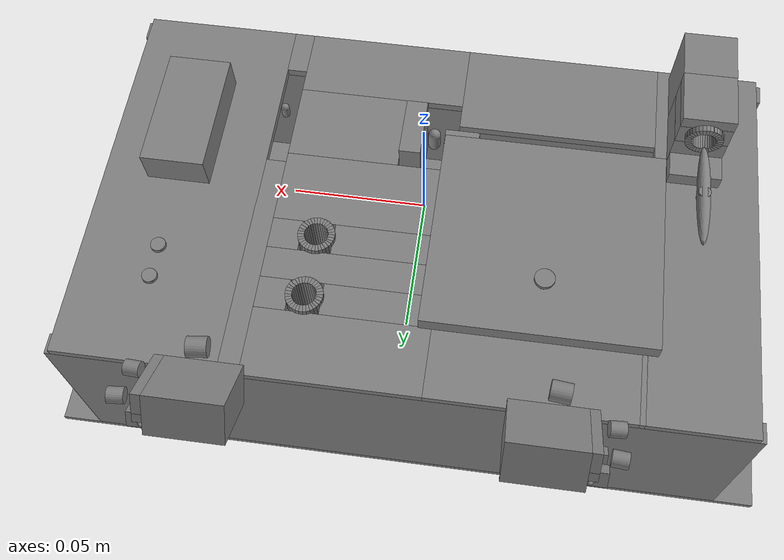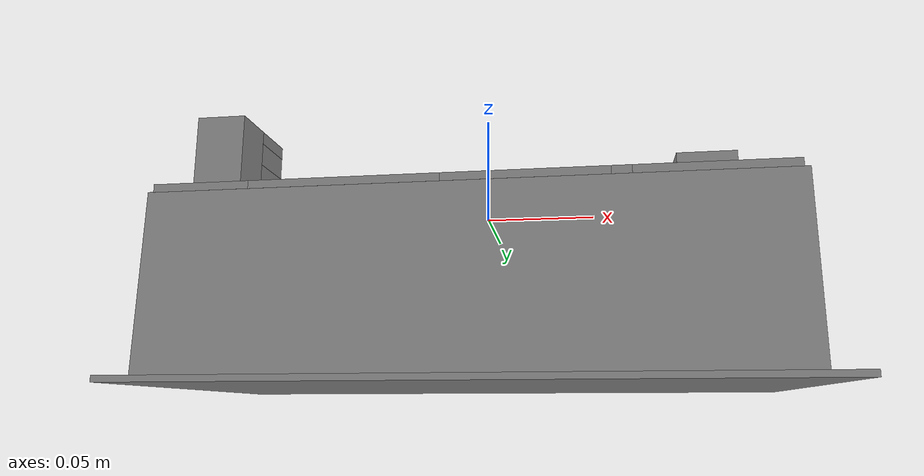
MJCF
<mujoco model="MuJoCo Model">
  <compiler angle="radian"/>

  <worldbody>
    <body name="task_board_prim">
      <body name="task_board_main_prim">
        <geom name="task_board_main_collision_001_prim" size="0.00134343 0.0781258 0.144743" pos="-0.000692189 0.000563499 -0.0781784" quat="0 0.707107 0 0.707107" type="box"/>
        <geom name="task_board_main_collision_002_prim" size="0.00379953 0.0368795 0.128913" pos="-0.000740358 -0.0727772 -0.0401744" quat="0.506585 0.493345 0.506567 0.493328" type="box"/>
        <geom name="task_board_main_collision_003_prim" size="0.00379971 0.0368805 0.128919" pos="-0.00070511 0.0739008 -0.0401748" quat="0.493332 0.506577 0.49334 0.506576" type="box"/>
        <geom name="task_board_main_collision_004_prim" size="0.00130879 0.0368203 0.0705451" pos="-0.127237 0.000563446 -0.0402381" quat="0.707031 0.707031 0.0103232 -0.0103232" type="box"/>
        <geom name="task_board_main_collision_005_prim" size="0.00130879 0.0368203 0.0705791" pos="0.125836 0.000556891 -0.0402381" quat="0.707031 0.707031 -0.0103232 0.0103232" type="box"/>
        <geom name="task_board_main_collision_006_prim" size="0.001651 0.030813 0.0761998" pos="0.0950813 0.000562715 -0.001651" quat="0.499997 0.500003 -0.499997 0.500003" type="box"/>
        <geom name="task_board_main_collision_007_prim" size="0.001651 0.0200923 0.0761996" pos="-0.107209 0.000562997 -0.001651" quat="0.500001 0.499999 -0.500001 0.499999" type="box"/>
        <geom name="task_board_main_collision_008_prim" size="0.000999998 0.001651 0.0514285" pos="-0.086284 0.0253345 -0.001651" quat="0.707107 0.707107 0 0" type="box"/>
        <geom name="task_board_main_collision_009_prim" size="0.001651 0.0187765 0.039" pos="-0.048284 -0.0568595 -0.001651" quat="0 0.707107 0 0.707107" type="box"/>
        <geom name="task_board_main_collision_010_prim" size="0.001651 0.0139015 0.0328635" pos="0.0235795 -0.0617345 -0.001651" quat="0 0.707107 0 0.707107" type="box"/>
        <geom name="task_board_main_collision_011_prim" size="0.001651 0.004 0.00942799" pos="0.060443 -0.066208 -0.001651" quat="0.5 0.5 -0.5 0.5" type="box"/>
        <geom name="task_board_main_collision_012_prim" size="0.001651 0.0155 0.0218635" pos="0.0345795 -0.032333 -0.001651" quat="0 0.707107 0 0.707107" type="box"/>
        <geom name="task_board_main_collision_013_prim" size="0.001651 0.014745 0.0328635" pos="0.0235795 -0.002088 -0.001651" quat="0 0.707107 0 0.707107" type="box"/>
        <geom name="task_board_main_collision_014_prim" size="0.001651 0.004 0.0447715" pos="0.060443 0.0319915 -0.001651" quat="0.5 0.5 -0.5 0.5" type="box"/>
        <geom name="task_board_main_collision_015_prim" size="0.001651 0.013303 0.0328635" pos="0.0235795 0.06346 -0.001651" quat="0 0.707107 0 0.707107" type="box"/>
        <geom name="task_board_main_collision_016_prim" size="0.001651 0.00625 0.0328635" pos="0.0235795 0.031407 -0.001651" quat="0 0.707107 0 0.707107" type="box"/>
        <geom name="task_board_main_collision_017_prim" size="0.001651 0.0058795 0.00625" pos="0.0505635 0.043907 -0.001651" quat="0.5 0.5 -0.5 0.5" type="box"/>
        <geom name="task_board_main_collision_018_prim" size="0.001651 0.0058795 0.00625" pos="0.0505635 0.018907 -0.001651" quat="0.5 0.5 -0.5 0.5" type="box"/>
        <geom name="task_board_main_collision_019_prim" size="0.001651 0.00625 0.0207435" pos="0.0114595 0.018907 -0.001651" quat="0 0.707107 0 0.707107" type="box"/>
        <geom name="task_board_main_collision_020_prim" size="0.001651 0.00625 0.0207435" pos="0.0114595 0.043907 -0.001651" quat="0 0.707107 0 0.707107" type="box"/>
        <geom name="task_board_main_collision_021_prim" size="0.001651 0.013923 0.038" pos="-0.047284 0.06284 -0.001651" quat="0 0.707107 0 0.707107" type="box"/>
        <geom name="task_board_main_collision_022_prim" size="0.0042 0.012 0.0155" pos="0.008516 -0.032333 -0.010402" type="box"/>
        <geom name="task_board_main_collision_023_prim" size="0.002475 0.002997" pos="0.000116006 -0.032033 -0.001902" type="capsule"/>
        <geom name="task_board_main_collision_024_prim" size="0.00306372 0.00322174 0.0068" pos="-0.010884 -0.032033 -0.001902" quat="0.5 0.5 0.5 0.5" type="box"/>
      </body>
      <body name="task_board_banana_plug_black_prim" pos="0.038443 0.043907 0">
        <body name="task_board_banana_plug_black_hole_prim" pos="0 0 0.0025">
          <geom name="task_board_banana_plug_hole_black_collision_001_prim" size="0.000686124 0.00126752 0.0117035" pos="0.00579674 -7.93951e-07 -0.0117495" quat="0.707107 -0.000234279 -0.000234279 0.707107" type="box"/>
          <geom name="task_board_banana_plug_hole_black_collision_002_prim" size="0.000686124 0.00126752 0.0117035" pos="0.00568551 0.00113011 -0.0117495" quat="0.634393 -0.000210188 -0.000256115 0.77301" type="box"/>
          <geom name="task_board_banana_plug_hole_black_collision_003_prim" size="0.000686124 0.00126752 0.0117035" pos="0.0053558 0.00221758 -0.0117495" quat="0.55557 -0.000184072 -0.000275483 0.831469" type="box"/>
          <geom name="task_board_banana_plug_hole_black_collision_004_prim" size="0.000686124 0.00126752 0.0117035" pos="0.00482025 0.00321984 -0.0117495" quat="0.471396 -0.000156184 -0.000292199 0.881921" type="box"/>
          <geom name="task_board_banana_plug_hole_black_collision_005_prim" size="0.000686124 0.00126752 0.0117035" pos="0.00409948 0.00409835 -0.0117495" quat="0.382684 -0.000126791 -0.000306101 0.923879" type="box"/>
          <geom name="task_board_banana_plug_hole_black_collision_006_prim" size="0.000686124 0.00126752 0.0117035" pos="0.00322115 0.00481938 -0.0117495" quat="0.290284 -9.61773e-05 -0.000317055 0.95694" type="box"/>
          <geom name="task_board_banana_plug_hole_black_collision_007_prim" size="0.000686124 0.00126752 0.0117035" pos="0.00221905 0.00535519 -0.0117495" quat="0.195091 -6.46377e-05 -0.000324955 0.980785" type="box"/>
          <geom name="task_board_banana_plug_hole_black_collision_008_prim" size="0.000686124 0.00126752 0.0117035" pos="0.00113167 0.0056852 -0.0117495" quat="0.0980171 -3.24751e-05 -0.000329726 0.995185" type="box"/>
          <geom name="task_board_banana_plug_hole_black_collision_009_prim" size="0.000686124 0.00126752 0.0117035" pos="7.93951e-07 0.00579674 -0.0117495" quat="0 0 -0.000331321 1" type="box"/>
          <geom name="task_board_banana_plug_hole_black_collision_010_prim" size="0.000686124 0.00126752 0.0117035" pos="-0.00113011 0.00568551 -0.0117495" quat="-0.0980171 3.24751e-05 -0.000329726 0.995185" type="box"/>
          <geom name="task_board_banana_plug_hole_black_collision_011_prim" size="0.000686124 0.00126752 0.0117035" pos="-0.00221759 0.00535579 -0.0117495" quat="-0.195091 6.46377e-05 -0.000324955 0.980785" type="box"/>
          <geom name="task_board_banana_plug_hole_black_collision_012_prim" size="0.000686124 0.00126752 0.0117035" pos="-0.00321983 0.00482026 -0.0117495" quat="-0.290284 9.61773e-05 -0.000317055 0.95694" type="box"/>
          <geom name="task_board_banana_plug_hole_black_collision_013_prim" size="0.000686124 0.00126752 0.0117035" pos="-0.00409836 0.00409947 -0.0117495" quat="-0.382684 0.000126791 -0.000306101 0.923879" type="box"/>
          <geom name="task_board_banana_plug_hole_black_collision_014_prim" size="0.000686124 0.00126752 0.0117035" pos="-0.00481937 0.00322116 -0.0117495" quat="-0.471396 0.000156184 -0.000292199 0.881921" type="box"/>
          <geom name="task_board_banana_plug_hole_black_collision_015_prim" size="0.000686124 0.00126752 0.0117035" pos="-0.00535519 0.00221905 -0.0117495" quat="-0.55557 0.000184072 -0.000275483 0.831469" type="box"/>
          <geom name="task_board_banana_plug_hole_black_collision_016_prim" size="0.000686124 0.00126752 0.0117035" pos="-0.0056852 0.00113167 -0.0117495" quat="-0.634393 0.000210188 -0.000256115 0.77301" type="box"/>
          <geom name="task_board_banana_plug_hole_black_collision_017_prim" size="0.000686124 0.00126752 0.0117035" pos="-0.00579674 7.93951e-07 -0.0117495" quat="-0.707107 0.000234279 -0.000234279 0.707107" type="box"/>
          <geom name="task_board_banana_plug_hole_black_collision_018_prim" size="0.000686124 0.00126752 0.0117035" pos="-0.00568551 -0.00113011 -0.0117495" quat="-0.77301 0.000256115 -0.000210188 0.634393" type="box"/>
          <geom name="task_board_banana_plug_hole_black_collision_019_prim" size="0.000686124 0.00126752 0.0117035" pos="-0.0053558 -0.00221758 -0.0117495" quat="-0.831469 0.000275483 -0.000184072 0.55557" type="box"/>
          <geom name="task_board_banana_plug_hole_black_collision_020_prim" size="0.000686124 0.00126752 0.0117035" pos="-0.00482025 -0.00321984 -0.0117495" quat="-0.881921 0.000292199 -0.000156184 0.471396" type="box"/>
          <geom name="task_board_banana_plug_hole_black_collision_021_prim" size="0.000686124 0.00126752 0.0117035" pos="-0.00409948 -0.00409835 -0.0117495" quat="-0.923879 0.000306101 -0.000126791 0.382684" type="box"/>
          <geom name="task_board_banana_plug_hole_black_collision_022_prim" size="0.000686124 0.00126752 0.0117035" pos="-0.00322115 -0.00481938 -0.0117495" quat="-0.95694 0.000317055 -9.61773e-05 0.290284" type="box"/>
          <geom name="task_board_banana_plug_hole_black_collision_023_prim" size="0.000686124 0.00126752 0.0117035" pos="-0.00221905 -0.00535519 -0.0117495" quat="-0.980785 0.000324955 -6.46377e-05 0.195091" type="box"/>
          <geom name="task_board_banana_plug_hole_black_collision_024_prim" size="0.000686124 0.00126752 0.0117035" pos="-0.00113167 -0.0056852 -0.0117495" quat="-0.995185 0.000329726 -3.24751e-05 0.0980171" type="box"/>
          <geom name="task_board_banana_plug_hole_black_collision_025_prim" size="0.000686124 0.00126752 0.0117035" pos="-7.93951e-07 -0.00579674 -0.0117495" quat="-1 0.000331321 0 0" type="box"/>
          <geom name="task_board_banana_plug_hole_black_collision_026_prim" size="0.000686124 0.00126752 0.0117035" pos="0.00113011 -0.00568551 -0.0117495" quat="-0.995185 0.000329726 3.24751e-05 -0.0980171" type="box"/>
          <geom name="task_board_banana_plug_hole_black_collision_027_prim" size="0.000686124 0.00126752 0.0117035" pos="0.00221759 -0.00535579 -0.0117495" quat="-0.980785 0.000324955 6.46377e-05 -0.195091" type="box"/>
          <geom name="task_board_banana_plug_hole_black_collision_028_prim" size="0.000686124 0.00126752 0.0117035" pos="0.00321983 -0.00482026 -0.0117495" quat="-0.95694 0.000317055 9.61773e-05 -0.290284" type="box"/>
          <geom name="task_board_banana_plug_hole_black_collision_029_prim" size="0.000686124 0.00126752 0.0117035" pos="0.00409836 -0.00409947 -0.0117495" quat="-0.923879 0.000306101 0.000126791 -0.382684" type="box"/>
          <geom name="task_board_banana_plug_hole_black_collision_030_prim" size="0.000686124 0.00126752 0.0117035" pos="0.00481937 -0.00322116 -0.0117495" quat="-0.881921 0.000292199 0.000156184 -0.471396" type="box"/>
          <geom name="task_board_banana_plug_hole_black_collision_031_prim" size="0.000686124 0.00126752 0.0117035" pos="0.00535519 -0.00221905 -0.0117495" quat="-0.831469 0.000275483 0.000184072 -0.55557" type="box"/>
          <geom name="task_board_banana_plug_hole_black_collision_032_prim" size="0.000686124 0.00126752 0.0117035" pos="0.0056852 -0.00113167 -0.0117495" quat="-0.77301 0.000256115 0.000210188 -0.634393" type="box"/>
        </body>
      </body>
      <body name="task_board_banana_plug_red_prim" pos="0.038443 0.018907 0">
        <body name="task_board_banana_plug_red_hole_prim" pos="0 0 0.0025">
          <geom name="task_board_banana_plug_hole_red_collision_001_prim" size="0.000686124 0.00126752 0.0117035" pos="0.00579674 -7.93951e-07 -0.0117495" quat="0.707107 -0.000234279 -0.000234279 0.707107" type="box"/>
          <geom name="task_board_banana_plug_hole_red_collision_002_prim" size="0.000686124 0.00126752 0.0117035" pos="0.00568551 0.00113011 -0.0117495" quat="0.634393 -0.000210188 -0.000256115 0.77301" type="box"/>
          <geom name="task_board_banana_plug_hole_red_collision_003_prim" size="0.000686124 0.00126752 0.0117035" pos="0.0053558 0.00221758 -0.0117495" quat="0.55557 -0.000184072 -0.000275483 0.831469" type="box"/>
          <geom name="task_board_banana_plug_hole_red_collision_004_prim" size="0.000686124 0.00126752 0.0117035" pos="0.00482025 0.00321984 -0.0117495" quat="0.471396 -0.000156184 -0.000292199 0.881921" type="box"/>
          <geom name="task_board_banana_plug_hole_red_collision_005_prim" size="0.000686124 0.00126752 0.0117035" pos="0.00409948 0.00409835 -0.0117495" quat="0.382684 -0.000126791 -0.000306101 0.923879" type="box"/>
          <geom name="task_board_banana_plug_hole_red_collision_006_prim" size="0.000686124 0.00126752 0.0117035" pos="0.00322115 0.00481938 -0.0117495" quat="0.290284 -9.61773e-05 -0.000317055 0.95694" type="box"/>
          <geom name="task_board_banana_plug_hole_red_collision_007_prim" size="0.000686124 0.00126752 0.0117035" pos="0.00221905 0.00535519 -0.0117495" quat="0.195091 -6.46377e-05 -0.000324955 0.980785" type="box"/>
          <geom name="task_board_banana_plug_hole_red_collision_008_prim" size="0.000686124 0.00126752 0.0117035" pos="0.00113167 0.0056852 -0.0117495" quat="0.0980171 -3.24751e-05 -0.000329726 0.995185" type="box"/>
          <geom name="task_board_banana_plug_hole_red_collision_009_prim" size="0.000686124 0.00126752 0.0117035" pos="7.93951e-07 0.00579674 -0.0117495" quat="0 0 -0.000331321 1" type="box"/>
          <geom name="task_board_banana_plug_hole_red_collision_010_prim" size="0.000686124 0.00126752 0.0117035" pos="-0.00113011 0.00568551 -0.0117495" quat="-0.0980171 3.24751e-05 -0.000329726 0.995185" type="box"/>
          <geom name="task_board_banana_plug_hole_red_collision_011_prim" size="0.000686124 0.00126752 0.0117035" pos="-0.00221759 0.00535579 -0.0117495" quat="-0.195091 6.46377e-05 -0.000324955 0.980785" type="box"/>
          <geom name="task_board_banana_plug_hole_red_collision_012_prim" size="0.000686124 0.00126752 0.0117035" pos="-0.00321983 0.00482026 -0.0117495" quat="-0.290284 9.61773e-05 -0.000317055 0.95694" type="box"/>
          <geom name="task_board_banana_plug_hole_red_collision_013_prim" size="0.000686124 0.00126752 0.0117035" pos="-0.00409836 0.00409947 -0.0117495" quat="-0.382684 0.000126791 -0.000306101 0.923879" type="box"/>
          <geom name="task_board_banana_plug_hole_red_collision_014_prim" size="0.000686124 0.00126752 0.0117035" pos="-0.00481937 0.00322116 -0.0117495" quat="-0.471396 0.000156184 -0.000292199 0.881921" type="box"/>
          <geom name="task_board_banana_plug_hole_red_collision_015_prim" size="0.000686124 0.00126752 0.0117035" pos="-0.00535519 0.00221905 -0.0117495" quat="-0.55557 0.000184072 -0.000275483 0.831469" type="box"/>
          <geom name="task_board_banana_plug_hole_red_collision_016_prim" size="0.000686124 0.00126752 0.0117035" pos="-0.0056852 0.00113167 -0.0117495" quat="-0.634393 0.000210188 -0.000256115 0.77301" type="box"/>
          <geom name="task_board_banana_plug_hole_red_collision_017_prim" size="0.000686124 0.00126752 0.0117035" pos="-0.00579674 7.93951e-07 -0.0117495" quat="-0.707107 0.000234279 -0.000234279 0.707107" type="box"/>
          <geom name="task_board_banana_plug_hole_red_collision_018_prim" size="0.000686124 0.00126752 0.0117035" pos="-0.00568551 -0.00113011 -0.0117495" quat="-0.77301 0.000256115 -0.000210188 0.634393" type="box"/>
          <geom name="task_board_banana_plug_hole_red_collision_019_prim" size="0.000686124 0.00126752 0.0117035" pos="-0.0053558 -0.00221758 -0.0117495" quat="-0.831469 0.000275483 -0.000184072 0.55557" type="box"/>
          <geom name="task_board_banana_plug_hole_red_collision_020_prim" size="0.000686124 0.00126752 0.0117035" pos="-0.00482025 -0.00321984 -0.0117495" quat="-0.881921 0.000292199 -0.000156184 0.471396" type="box"/>
          <geom name="task_board_banana_plug_hole_red_collision_021_prim" size="0.000686124 0.00126752 0.0117035" pos="-0.00409948 -0.00409835 -0.0117495" quat="-0.923879 0.000306101 -0.000126791 0.382684" type="box"/>
          <geom name="task_board_banana_plug_hole_red_collision_022_prim" size="0.000686124 0.00126752 0.0117035" pos="-0.00322115 -0.00481938 -0.0117495" quat="-0.95694 0.000317055 -9.61773e-05 0.290284" type="box"/>
          <geom name="task_board_banana_plug_hole_red_collision_023_prim" size="0.000686124 0.00126752 0.0117035" pos="-0.00221905 -0.00535519 -0.0117495" quat="-0.980785 0.000324955 -6.46377e-05 0.195091" type="box"/>
          <geom name="task_board_banana_plug_hole_red_collision_024_prim" size="0.000686124 0.00126752 0.0117035" pos="-0.00113167 -0.0056852 -0.0117495" quat="-0.995185 0.000329726 -3.24751e-05 0.0980171" type="box"/>
          <geom name="task_board_banana_plug_hole_red_collision_025_prim" size="0.000686124 0.00126752 0.0117035" pos="-7.93951e-07 -0.00579674 -0.0117495" quat="-1 0.000331321 0 0" type="box"/>
          <geom name="task_board_banana_plug_hole_red_collision_026_prim" size="0.000686124 0.00126752 0.0117035" pos="0.00113011 -0.00568551 -0.0117495" quat="-0.995185 0.000329726 3.24751e-05 -0.0980171" type="box"/>
          <geom name="task_board_banana_plug_hole_red_collision_027_prim" size="0.000686124 0.00126752 0.0117035" pos="0.00221759 -0.00535579 -0.0117495" quat="-0.980785 0.000324955 6.46377e-05 -0.195091" type="box"/>
          <geom name="task_board_banana_plug_hole_red_collision_028_prim" size="0.000686124 0.00126752 0.0117035" pos="0.00321983 -0.00482026 -0.0117495" quat="-0.95694 0.000317055 9.61773e-05 -0.290284" type="box"/>
          <geom name="task_board_banana_plug_hole_red_collision_029_prim" size="0.000686124 0.00126752 0.0117035" pos="0.00409836 -0.00409947 -0.0117495" quat="-0.923879 0.000306101 0.000126791 -0.382684" type="box"/>
          <geom name="task_board_banana_plug_hole_red_collision_030_prim" size="0.000686124 0.00126752 0.0117035" pos="0.00481937 -0.00322116 -0.0117495" quat="-0.881921 0.000292199 0.000156184 -0.471396" type="box"/>
          <geom name="task_board_banana_plug_hole_red_collision_031_prim" size="0.000686124 0.00126752 0.0117035" pos="0.00535519 -0.00221905 -0.0117495" quat="-0.831469 0.000275483 0.000184072 -0.55557" type="box"/>
          <geom name="task_board_banana_plug_hole_red_collision_032_prim" size="0.000686124 0.00126752 0.0117035" pos="0.0056852 -0.00113167 -0.0117495" quat="-0.77301 0.000256115 0.000210188 -0.634393" type="box"/>
        </body>
      </body>
      <body name="task_board_slider_prim" pos="0.060443 -0.03453 0.003365">
        <geom name="task_board_slider_collision_001_prim" size="0.001625 0.002" pos="-1.86265e-09 3.72529e-09 -9.87656e-05" type="capsule"/>
      </body>
      <body name="task_board_cable_wrap_post_left_prim" pos="0.088949 0.093439 0.00164">
        <geom name="task_board_cable_wrap_post_left_collision_001_prim" size="0.000500123 0.00120001 0.00700008" pos="-0.0084495 0.00143417 -0.00204739" quat="0.326505 0.627211 -0.627211 0.326505" type="box"/>
        <geom name="task_board_cable_wrap_post_left_collision_002_prim" size="0.00820695 0.0120002 0.0142198" pos="-0.0213473 -0.00355701 0.00508041" quat="-0.212679 0.674547 -0.21258 0.674213" type="box"/>
        <geom name="task_board_cable_wrap_post_left_collision_003_prim" size="0.00229859 0.00300005 0.00383113" pos="-0.00347065 -0.00390079 -0.00273104" quat="0.328779 0.63159 0.324207 0.622807" type="box"/>
        <geom name="task_board_cable_wrap_post_left_collision_004_prim" size="0.00229859 0.00300005 0.00383113" pos="-0.00347065 0.00390087 0.00273172" quat="0.324207 0.622807 0.328779 0.63159" type="box"/>
        <geom name="task_board_cable_wrap_post_left_collision_005_prim" size="0.00170062 0.00179098 0.012" pos="-0.00553542 -0.00268959 0.00384159" quat="0.326505 0.627212 -0.627212 0.326505" type="box"/>
        <geom name="task_board_cable_wrap_post_left_collision_006_prim" size="0.0017986 0.00400724 0.012" pos="-0.00545473 -0.00596388 0.0085177" quat="0.461748 0.887011 0.000530518 -0.00027617" type="box"/>
        <geom name="task_board_cable_wrap_post_left_collision_007_prim" size="0.00383124 0.00383124" pos="-0.0170906 -0.0239804 0.00148485" quat="-0.0143574 0.705767 0.0567244 0.706023" type="cylinder"/>
        <geom name="task_board_cable_wrap_post_left_collision_008_prim" size="0.00290626 0.00290626" pos="0.00257304 0.000693733 0.0129045" quat="0.570068 0.370903 0.582932 0.444572" type="cylinder"/>
        <geom name="task_board_cable_wrap_post_left_collision_009_prim" size="0.00291041 0.00291041" pos="0.00259025 -0.0123669 0.00375525" quat="0.0257791 0.73394 -0.0290106 0.678104" type="cylinder"/>
        <geom name="task_board_cable_wrap_post_left_collision_010_prim" size="0.00107838 0.00150345 0.0012555" pos="-0.00565856 -0.00776851 -0.00483485" quat="0.934378 0.295076 0.0639729 -0.189146" type="ellipsoid"/>
        <geom name="task_board_cable_wrap_post_left_collision_011_prim" size="0.00107843 0.00150345 0.00125586" pos="-0.00565854 0.00720109 0.00564588" quat="0.934377 0.295077 -0.0639928 0.189139" type="ellipsoid"/>
      </body>
      <body name="task_board_button_blue_prim" pos="0.096243 0.043907 0.002023">
        <geom name="task_board_button_blue_collision_001_prim" size="0.00285 0.0008" type="cylinder"/>
      </body>
      <body name="task_board_banana_pug_port_prim" pos="-0.101844 -0.043016 0.019">
        <geom name="task_board_banana_pug_port_collision_001_prim" size="0.00262545 0.0100061 0.0104557" pos="-3.48165e-07 -0.000216948 0.00737491" quat="0.499864 0.500136 -0.499847 0.500153" type="box"/>
        <geom name="task_board_banana_pug_port_collision_002_prim" size="0.00712571 0.0100396 0.0104958" pos="1.12724e-06 -0.000211095 -0.011875" quat="0.500958 0.499057 -0.500923 0.499059" type="box"/>
        <geom name="task_board_banana_pug_port_collision_003_prim" size="0.00958191 0.0100379 0.0145007" pos="1.23507e-06 -0.0202191 -0.0045" quat="0.70571 9.6852e-07 -2.44858e-05 0.708501" type="box"/>
        <geom name="task_board_banana_pug_port_collision_004_prim" size="0.00300007 0.00499383 0.0100022" pos="2.36467e-06 0.0152372 -0.016" quat="-0.000165731 0.707107 0.000165731 0.707107" type="box"/>
        <geom name="task_board_banana_pug_port_collision_005_prim" size="0.00262567 0.00475001 0.0104502" pos="-0.00737509 -0.000218518 9.51754e-08" quat="0.707107 0.707107 2.2365e-05 2.2365e-05" type="box"/>
        <geom name="task_board_banana_pug_port_collision_006_prim" size="0.00262561 0.00475321 0.0104578" pos="0.00737519 -0.000214061 -8.38937e-07" quat="0.707215 0.706998 -1.92416e-05 -1.92357e-05" type="box"/>
        <body name="task_board_banana_pug_hole_prim" pos="0 0.012735 0" quat="0.707107 -0.707107 0 0">
          <geom name="task_board_banana_pug_hole_collision_001_prim" size="0.000686124 0.00126752 0.0117035" pos="0.00579674 -7.93951e-07 -0.0117495" quat="0.707107 -0.000234279 -0.000234279 0.707107" type="box"/>
          <geom name="task_board_banana_pug_hole_collision_002_prim" size="0.000686124 0.00126752 0.0117035" pos="0.00568551 0.00113011 -0.0117495" quat="0.634393 -0.000210188 -0.000256115 0.77301" type="box"/>
          <geom name="task_board_banana_pug_hole_collision_003_prim" size="0.000686124 0.00126752 0.0117035" pos="0.0053558 0.00221758 -0.0117495" quat="0.55557 -0.000184072 -0.000275483 0.831469" type="box"/>
          <geom name="task_board_banana_pug_hole_collision_004_prim" size="0.000686124 0.00126752 0.0117035" pos="0.00482025 0.00321984 -0.0117495" quat="0.471396 -0.000156184 -0.000292199 0.881921" type="box"/>
          <geom name="task_board_banana_pug_hole_collision_005_prim" size="0.000686124 0.00126752 0.0117035" pos="0.00409948 0.00409835 -0.0117495" quat="0.382684 -0.000126791 -0.000306101 0.923879" type="box"/>
          <geom name="task_board_banana_pug_hole_collision_006_prim" size="0.000686124 0.00126752 0.0117035" pos="0.00322115 0.00481938 -0.0117495" quat="0.290284 -9.61773e-05 -0.000317055 0.95694" type="box"/>
          <geom name="task_board_banana_pug_hole_collision_007_prim" size="0.000686124 0.00126752 0.0117035" pos="0.00221905 0.00535519 -0.0117495" quat="0.195091 -6.46377e-05 -0.000324955 0.980785" type="box"/>
          <geom name="task_board_banana_pug_hole_collision_008_prim" size="0.000686124 0.00126752 0.0117035" pos="0.00113167 0.0056852 -0.0117495" quat="0.0980171 -3.24751e-05 -0.000329726 0.995185" type="box"/>
          <geom name="task_board_banana_pug_hole_collision_009_prim" size="0.000686124 0.00126752 0.0117035" pos="7.93951e-07 0.00579674 -0.0117495" quat="0 0 -0.000331321 1" type="box"/>
          <geom name="task_board_banana_pug_hole_collision_010_prim" size="0.000686124 0.00126752 0.0117035" pos="-0.00113011 0.00568551 -0.0117495" quat="-0.0980171 3.24751e-05 -0.000329726 0.995185" type="box"/>
          <geom name="task_board_banana_pug_hole_collision_011_prim" size="0.000686124 0.00126752 0.0117035" pos="-0.00221759 0.00535579 -0.0117495" quat="-0.195091 6.46377e-05 -0.000324955 0.980785" type="box"/>
          <geom name="task_board_banana_pug_hole_collision_012_prim" size="0.000686124 0.00126752 0.0117035" pos="-0.00321983 0.00482026 -0.0117495" quat="-0.290284 9.61773e-05 -0.000317055 0.95694" type="box"/>
          <geom name="task_board_banana_pug_hole_collision_013_prim" size="0.000686124 0.00126752 0.0117035" pos="-0.00409836 0.00409947 -0.0117495" quat="-0.382684 0.000126791 -0.000306101 0.923879" type="box"/>
          <geom name="task_board_banana_pug_hole_collision_014_prim" size="0.000686124 0.00126752 0.0117035" pos="-0.00481937 0.00322116 -0.0117495" quat="-0.471396 0.000156184 -0.000292199 0.881921" type="box"/>
          <geom name="task_board_banana_pug_hole_collision_015_prim" size="0.000686124 0.00126752 0.0117035" pos="-0.00535519 0.00221905 -0.0117495" quat="-0.55557 0.000184072 -0.000275483 0.831469" type="box"/>
          <geom name="task_board_banana_pug_hole_collision_016_prim" size="0.000686124 0.00126752 0.0117035" pos="-0.0056852 0.00113167 -0.0117495" quat="-0.634393 0.000210188 -0.000256115 0.77301" type="box"/>
          <geom name="task_board_banana_pug_hole_collision_017_prim" size="0.000686124 0.00126752 0.0117035" pos="-0.00579674 7.93951e-07 -0.0117495" quat="-0.707107 0.000234279 -0.000234279 0.707107" type="box"/>
          <geom name="task_board_banana_pug_hole_collision_018_prim" size="0.000686124 0.00126752 0.0117035" pos="-0.00568551 -0.00113011 -0.0117495" quat="-0.77301 0.000256115 -0.000210188 0.634393" type="box"/>
          <geom name="task_board_banana_pug_hole_collision_019_prim" size="0.000686124 0.00126752 0.0117035" pos="-0.0053558 -0.00221758 -0.0117495" quat="-0.831469 0.000275483 -0.000184072 0.55557" type="box"/>
          <geom name="task_board_banana_pug_hole_collision_020_prim" size="0.000686124 0.00126752 0.0117035" pos="-0.00482025 -0.00321984 -0.0117495" quat="-0.881921 0.000292199 -0.000156184 0.471396" type="box"/>
          <geom name="task_board_banana_pug_hole_collision_021_prim" size="0.000686124 0.00126752 0.0117035" pos="-0.00409948 -0.00409835 -0.0117495" quat="-0.923879 0.000306101 -0.000126791 0.382684" type="box"/>
          <geom name="task_board_banana_pug_hole_collision_022_prim" size="0.000686124 0.00126752 0.0117035" pos="-0.00322115 -0.00481938 -0.0117495" quat="-0.95694 0.000317055 -9.61773e-05 0.290284" type="box"/>
          <geom name="task_board_banana_pug_hole_collision_023_prim" size="0.000686124 0.00126752 0.0117035" pos="-0.00221905 -0.00535519 -0.0117495" quat="-0.980785 0.000324955 -6.46377e-05 0.195091" type="box"/>
          <geom name="task_board_banana_pug_hole_collision_024_prim" size="0.000686124 0.00126752 0.0117035" pos="-0.00113167 -0.0056852 -0.0117495" quat="-0.995185 0.000329726 -3.24751e-05 0.0980171" type="box"/>
          <geom name="task_board_banana_pug_hole_collision_025_prim" size="0.000686124 0.00126752 0.0117035" pos="-7.93951e-07 -0.00579674 -0.0117495" quat="-1 0.000331321 0 0" type="box"/>
          <geom name="task_board_banana_pug_hole_collision_026_prim" size="0.000686124 0.00126752 0.0117035" pos="0.00113011 -0.00568551 -0.0117495" quat="-0.995185 0.000329726 3.24751e-05 -0.0980171" type="box"/>
          <geom name="task_board_banana_pug_hole_collision_027_prim" size="0.000686124 0.00126752 0.0117035" pos="0.00221759 -0.00535579 -0.0117495" quat="-0.980785 0.000324955 6.46377e-05 -0.195091" type="box"/>
          <geom name="task_board_banana_pug_hole_collision_028_prim" size="0.000686124 0.00126752 0.0117035" pos="0.00321983 -0.00482026 -0.0117495" quat="-0.95694 0.000317055 9.61773e-05 -0.290284" type="box"/>
          <geom name="task_board_banana_pug_hole_collision_029_prim" size="0.000686124 0.00126752 0.0117035" pos="0.00409836 -0.00409947 -0.0117495" quat="-0.923879 0.000306101 0.000126791 -0.382684" type="box"/>
          <geom name="task_board_banana_pug_hole_collision_030_prim" size="0.000686124 0.00126752 0.0117035" pos="0.00481937 -0.00322116 -0.0117495" quat="-0.881921 0.000292199 0.000156184 -0.471396" type="box"/>
          <geom name="task_board_banana_pug_hole_collision_031_prim" size="0.000686124 0.00126752 0.0117035" pos="0.00535519 -0.00221905 -0.0117495" quat="-0.831469 0.000275483 0.000184072 -0.55557" type="box"/>
          <geom name="task_board_banana_pug_hole_collision_032_prim" size="0.000686124 0.00126752 0.0117035" pos="0.0056852 -0.00113167 -0.0117495" quat="-0.77301 0.000256115 0.000210188 -0.634393" type="box"/>
        </body>
      </body>
      <body name="task_board_m5_stick_c_prim" pos="0.096243 -0.02308 0.00685">
        <geom name="task_board_m5_stick_c_collision_001_prim" size="0.00684999 0.0121998 0.0241" pos="0 -1.39698e-09 0" quat="0.5 0.5 -0.5 0.5" type="box"/>
      </body>
      <body name="task_board_cable_wrap_post_right_prim" pos="-0.074328 0.093439 0.00164">
        <geom name="task_board_cable_wrap_post_right_collision_001_prim" size="0.000500123 0.00120001 0.00700008" pos="0.0084495 0.00143417 -0.00204739" quat="0.326505 0.627211 -0.627211 0.326505" type="box"/>
        <geom name="task_board_cable_wrap_post_right_collision_002_prim" size="0.00820695 0.0120002 0.0142198" pos="0.0213473 -0.00355701 0.00508041" quat="-0.21258 0.674213 -0.212679 0.674547" type="box"/>
        <geom name="task_board_cable_wrap_post_right_collision_003_prim" size="0.00229859 0.00300005 0.00383113" pos="0.00347065 -0.00390079 -0.00273104" quat="0.324207 0.622807 0.328779 0.63159" type="box"/>
        <geom name="task_board_cable_wrap_post_right_collision_004_prim" size="0.00229859 0.00300005 0.00383113" pos="0.00347065 0.00390087 0.00273172" quat="0.328779 0.63159 0.324207 0.622807" type="box"/>
        <geom name="task_board_cable_wrap_post_right_collision_005_prim" size="0.00170062 0.00179098 0.012" pos="0.00553542 -0.00268959 0.00384159" quat="0.326505 0.627212 -0.627212 0.326505" type="box"/>
        <geom name="task_board_cable_wrap_post_right_collision_006_prim" size="0.0017986 0.00400724 0.012" pos="0.00545473 -0.00596388 0.0085177" quat="0.461748 0.887011 -0.000530529 0.000276175" type="box"/>
        <geom name="task_board_cable_wrap_post_right_collision_007_prim" size="0.00383124 0.00383124" pos="0.0170906 -0.0239804 0.00148485" quat="0.0567244 0.706023 -0.0143574 0.705767" type="cylinder"/>
        <geom name="task_board_cable_wrap_post_right_collision_008_prim" size="0.00290626 0.00290626" pos="-0.00257304 0.000693733 0.0129045" quat="0.582932 0.444572 0.570068 0.370903" type="cylinder"/>
        <geom name="task_board_cable_wrap_post_right_collision_009_prim" size="0.00291041 0.00291041" pos="-0.00259025 -0.0123669 0.00375525" quat="-0.0290106 0.678104 0.0257791 0.73394" type="cylinder"/>
        <geom name="task_board_cable_wrap_post_right_collision_010_prim" size="0.00107838 0.00150345 0.0012555" pos="0.00565856 -0.00776851 -0.00483485" quat="0.934378 0.295076 -0.0639729 0.189146" type="ellipsoid"/>
        <geom name="task_board_cable_wrap_post_right_collision_011_prim" size="0.00107843 0.00150345 0.00125586" pos="0.00565854 0.00720109 0.00564588" quat="0.934377 0.295077 0.0639928 -0.189139" type="ellipsoid"/>
      </body>
      <body name="task_board_lid_prim" pos="-0.047284 -0.032333 -0.000802">
        <geom name="task_board_lid_collision_001_prim" size="0.003 0.04 0.0425" pos="-4.42147e-07 0.0455033 0.00887479" quat="-0.0106518 0.707027 -0.0106518 0.707027" type="box"/>
        <body name="task_board_lid_knob_prim" pos="0 0.065398 0.012198">
          <geom name="task_board_lid_knob_collision_001_prim" size="0.002 0.003967" pos="0 0 -0.00255" type="cylinder"/>
          <geom name="task_board_lid_knob_collision_002_prim" size="0.003743 0.000675" pos="0 0 0.004764" type="cylinder"/>
        </body>
      </body>
      <body name="task_board_button_red_prim" pos="0.096243 0.030907 0.002023">
        <geom name="task_board_button_red_collision_001_prim" size="0.00285 0.0008" type="cylinder"/>
      </body>
    </body>
    <body name="task_board_probe_prim" pos="-0.101844 -0.007 0.019">
      <geom name="task_board_probe_collision_001_prim" size="0.00227929 0.00227929" type="cylinder"/>
      <geom name="task_board_probe_collision_002_prim" size="0.00248625 0.00374621 0.00248625" type="ellipsoid"/>
      <geom name="task_board_probe_collision_003_prim" size="0.00219166 0.00219166" type="cylinder"/>
      <geom name="task_board_probe_collision_004_prim" size="0.00255388 0.0209977 0.00255388" type="ellipsoid"/>
    </body>
  </worldbody>
</mujoco>
